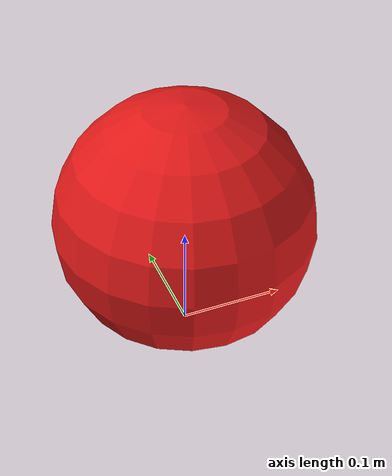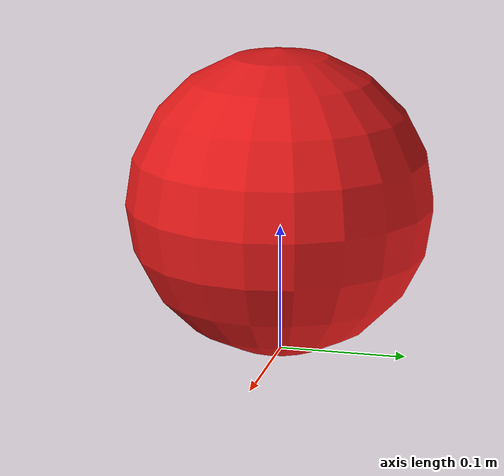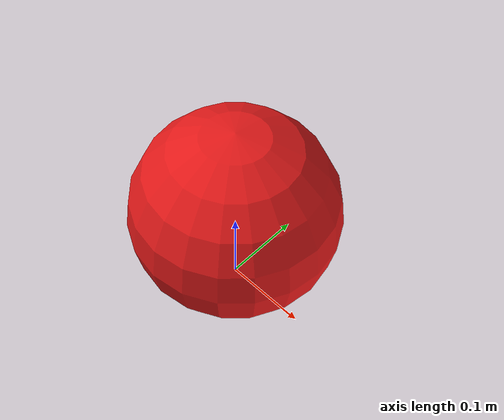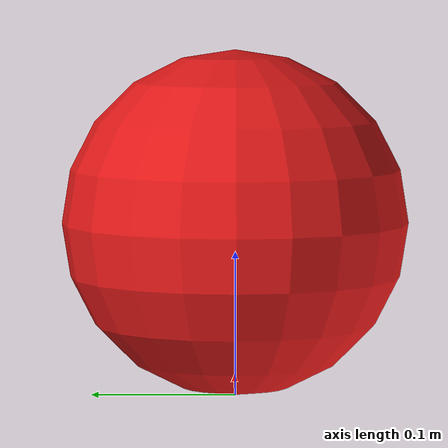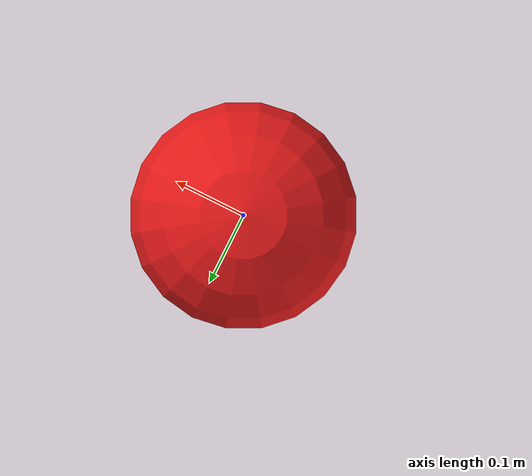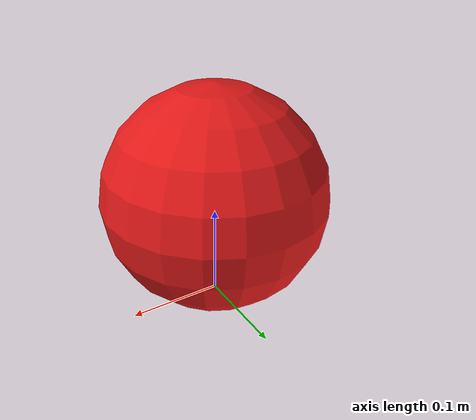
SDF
<?xml version="1.0" ?>
<sdf version="1.6">
  <model name="bola">
    <static>false</static>

    <link name="corpo">
      <pose>0 0 0.12 0 0 0</pose>

      <velocity_decay>
        <linear>0.002</linear>
        <angular>0.005</angular>
      </velocity_decay>

      <visual name="visual_bola">
        <geometry>
          <sphere>
            <radius>0.12</radius>
          </sphere>
        </geometry>
        <material>
          <ambient>0.8 0.1 0.1 1</ambient>
          <diffuse>0.9 0.1 0.1 1</diffuse>
          <specular>0.5 0.5 0.5 1</specular>
          <emissive>0.0 0.0 0.0 1</emissive>
        </material>
      </visual>

      <collision name="colisao_bola">
        <geometry>
          <sphere>
            <radius>0.12</radius>
          </sphere>
        </geometry>
        <surface>
          <friction>
            <ode>
              <mu>0.7</mu>
              <mu2>0.7</mu2>
              <slip1>0.0</slip1>
              <slip2>0.0</slip2>
            </ode>
          </friction>
          <contact>
            <ode>
              <kp>1e5</kp>
              <kd>10.0</kd>
              <max_vel>0.1</max_vel>
              <min_depth>0.001</min_depth>
            </ode>
          </contact>
          <bounce>
            <restitution_coefficient>0.7</restitution_coefficient>
            <threshold>0.5</threshold>
          </bounce>
        </surface>
      </collision>

      <!-- I = 2/5 * m * r² = 2/5 * 0.45 * 0.0144 = 0.002592 kg·m² -->
      <inertial>
        <mass>0.45</mass>
        <inertia>
          <ixx>0.002592</ixx>
          <iyy>0.002592</iyy>
          <izz>0.002592</izz>
          <ixy>0</ixy>
          <ixz>0</ixz>
          <iyz>0</iyz>
        </inertia>
      </inertial>

    </link>

  </model>
</sdf>
